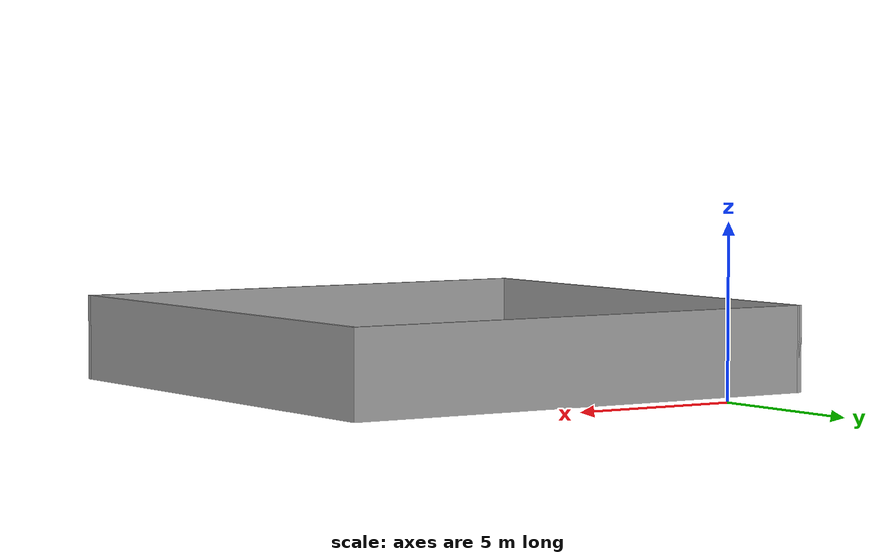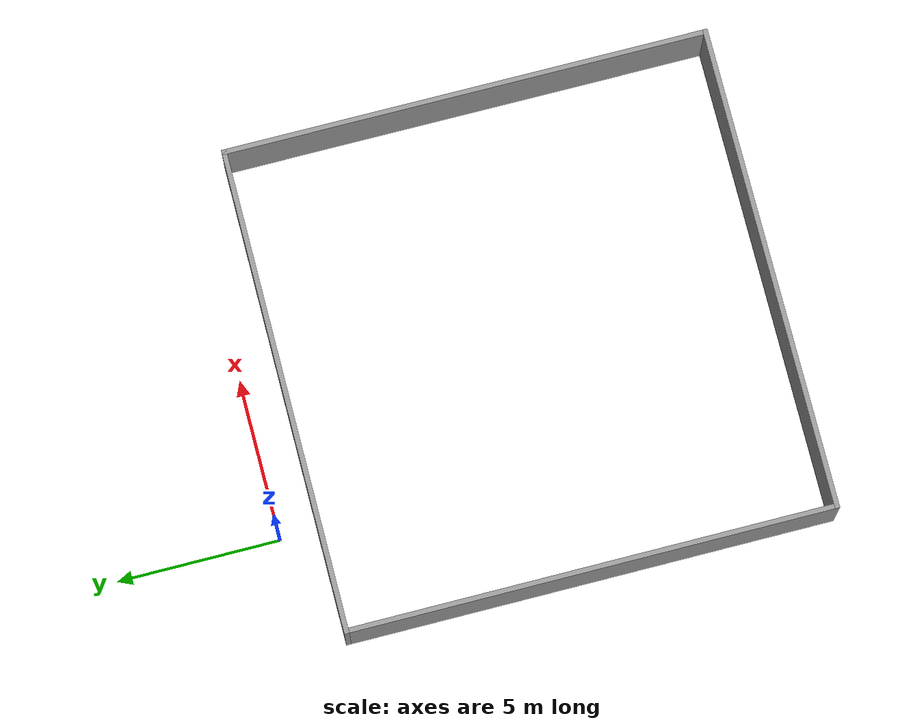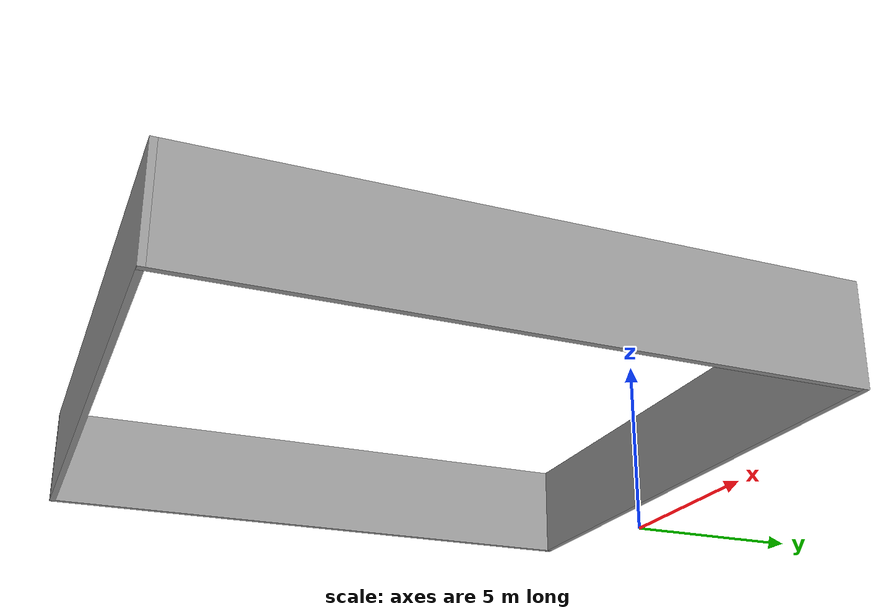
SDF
<?xml version='1.0'?>
<sdf version='1.7'>
  <model name='15*15'>
    <pose>3.955 -8.0725 0 0 -0 0</pose>
    <link name='Wall_0'>
      <collision name='Wall_0_Collision'>
        <geometry>
          <box>
            <size>15 0.15 2.5</size>
          </box>
        </geometry>
        <pose>0 0 1.25 0 -0 0</pose>
      </collision>
      <visual name='Wall_0_Visual'>
        <pose>0 0 1.25 0 -0 0</pose>
        <geometry>
          <box>
            <size>15 0.15 2.5</size>
          </box>
        </geometry>
        <material>
          <script>
            <uri>file://media/materials/scripts/gazebo.material</uri>
            <name>Gazebo/Grey</name>
          </script>
          <ambient>1 1 1 1</ambient>
        </material>
        <meta>
          <layer>0</layer>
        </meta>
      </visual>
      <pose>-7.425 -0.5725 0 0 -0 -1.5708</pose>
    </link>
    <link name='Wall_2'>
      <collision name='Wall_2_Collision'>
        <geometry>
          <box>
            <size>15 0.15 2.5</size>
          </box>
        </geometry>
        <pose>0 0 1.25 0 -0 0</pose>
      </collision>
      <visual name='Wall_2_Visual'>
        <pose>0 0 1.25 0 -0 0</pose>
        <geometry>
          <box>
            <size>15 0.15 2.5</size>
          </box>
        </geometry>
        <material>
          <script>
            <uri>file://media/materials/scripts/gazebo.material</uri>
            <name>Gazebo/Grey</name>
          </script>
          <ambient>1 1 1 1</ambient>
        </material>
        <meta>
          <layer>0</layer>
        </meta>
      </visual>
      <pose>0 6.8525 0 0 -0 0</pose>
    </link>
    <link name='Wall_4'>
      <collision name='Wall_4_Collision'>
        <geometry>
          <box>
            <size>15 0.15 2.5</size>
          </box>
        </geometry>
        <pose>0 0 1.25 0 -0 0</pose>
      </collision>
      <visual name='Wall_4_Visual'>
        <pose>0 0 1.25 0 -0 0</pose>
        <geometry>
          <box>
            <size>15 0.15 2.5</size>
          </box>
        </geometry>
        <material>
          <script>
            <uri>file://media/materials/scripts/gazebo.material</uri>
            <name>Gazebo/Grey</name>
          </script>
          <ambient>1 1 1 1</ambient>
        </material>
        <meta>
          <layer>0</layer>
        </meta>
      </visual>
      <pose>7.425 -0.5725 0 0 -0 -1.5708</pose>
    </link>
    <link name='Wall_5'>
      <collision name='Wall_5_Collision'>
        <geometry>
          <box>
            <size>15 0.15 2.5</size>
          </box>
        </geometry>
        <pose>0 0 1.25 0 -0 0</pose>
      </collision>
      <visual name='Wall_5_Visual'>
        <pose>0 0 1.25 0 -0 0</pose>
        <geometry>
          <box>
            <size>15 0.15 2.5</size>
          </box>
        </geometry>
        <material>
          <script>
            <uri>file://media/materials/scripts/gazebo.material</uri>
            <name>Gazebo/Grey</name>
          </script>
          <ambient>1 1 1 1</ambient>
        </material>
        <meta>
          <layer>0</layer>
        </meta>
      </visual>
      <pose>0 -7.9975 0 0 -0 3.14159</pose>
    </link>
    <static>1</static>
  </model>
</sdf>
